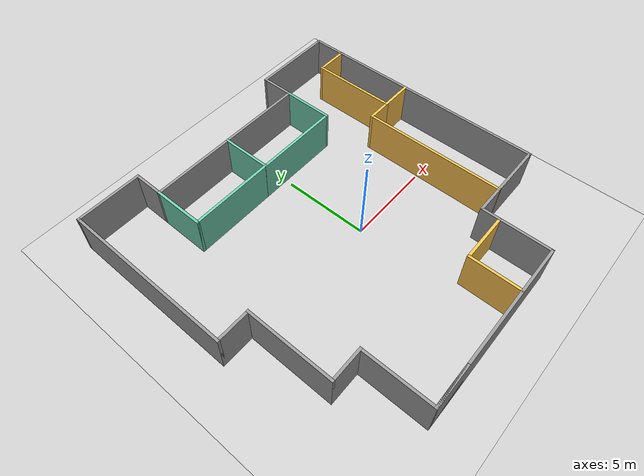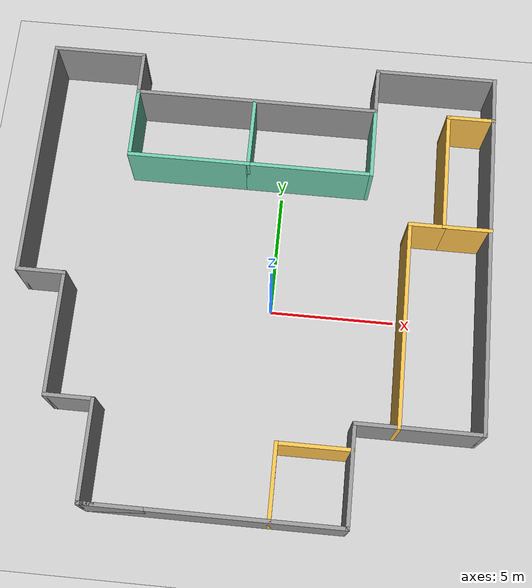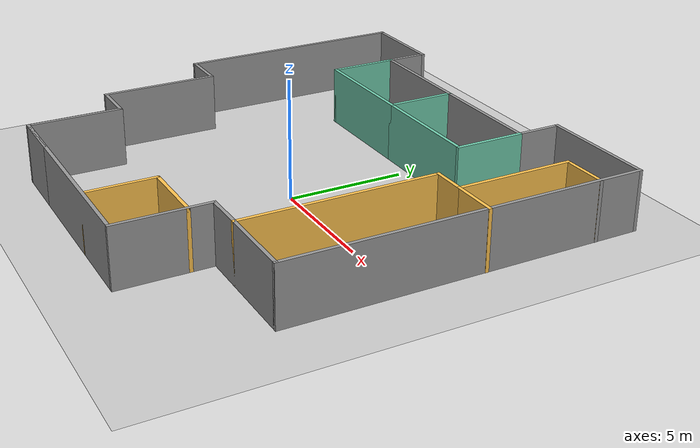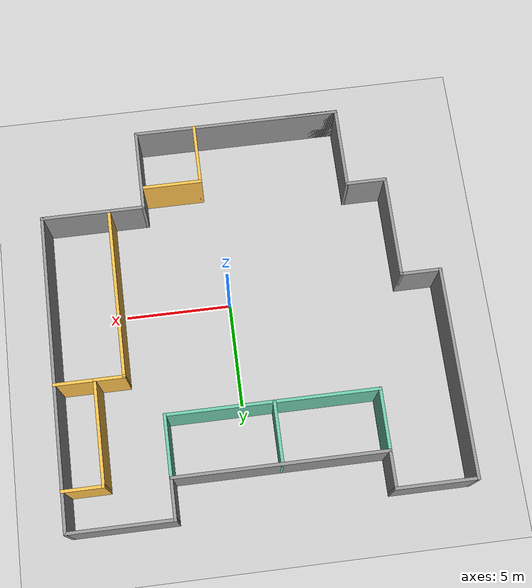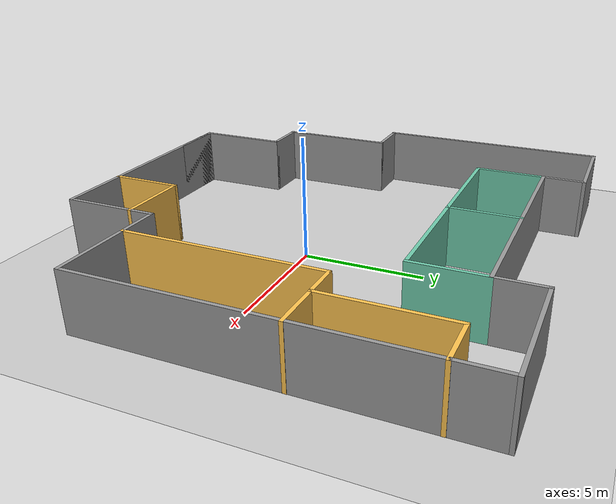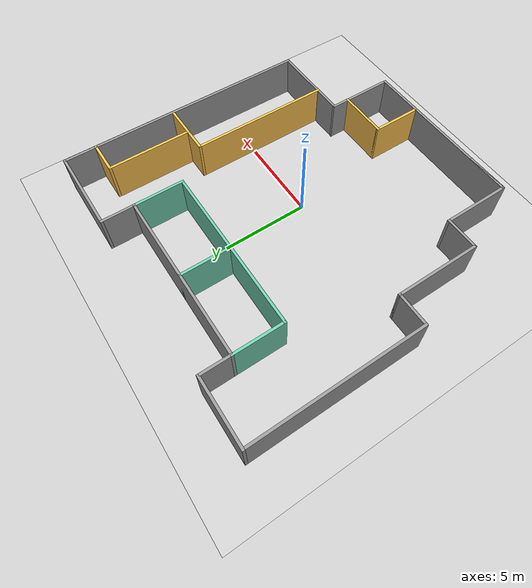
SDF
<sdf version="1.6">
 <world name="default">
  <model name="ground_plane">
   <static>1</static>
   <link name="link">
    <collision name="collision">
     <geometry><plane><normal>0 0 1</normal><size>100 100</size></plane></geometry>
     <surface>
      <contact><collide_bitmask>65535</collide_bitmask></contact>
      <friction><ode><mu>100</mu><mu2>50</mu2></ode></friction>
     </surface>
    </collision>
    <visual name="visual">
     <cast_shadows>0</cast_shadows>
     <geometry><plane><normal>0 0 1</normal><size>100 100</size></plane></geometry>
     <material>
      <script><uri>file://media/materials/scripts/gazebo.material</uri><name>Gazebo/Grey</name></script>
     </material>
    </visual>
   </link>
  </model>
  <model name="model">
   <link name="Wall_0">
    <pose>-9.205 4.275 0 0 0 -1.5708</pose>
    <visual name="Wall_0_Visual">
     <pose>0 0 1.25 0 -0 0</pose>
     <geometry><box><size>10 0.15 2.5</size></box></geometry>
     <material>
      <script><uri>file://media/materials/scripts/gazebo.material</uri><name>Gazebo/Grey</name></script>
      <ambient>1 1 1 1</ambient>
     </material>
     <meta><layer>0</layer></meta>
    </visual>
    <collision name="Wall_0_Collision">
     <pose>0 0 1.25 0 -0 0</pose>
     <geometry><box><size>10 0.15 2.5</size></box></geometry>
     <surface>
      <friction>
       <ode><mu>1</mu><mu2>1</mu2><fdir1>0 0 0</fdir1><slip1>0</slip1><slip2>0</slip2></ode>
       <torsional>
        <coefficient>1</coefficient>
        <patch_radius>0</patch_radius>
        <surface_radius>0</surface_radius>
        <use_patch_radius>1</use_patch_radius>
        <ode><slip>0</slip></ode>
       </torsional>
      </friction>
      <bounce><restitution_coefficient>0</restitution_coefficient><threshold>1e+06</threshold></bounce>
      <contact>
       <collide_without_contact>0</collide_without_contact>
       <collide_without_contact_bitmask>1</collide_without_contact_bitmask>
       <collide_bitmask>1</collide_bitmask>
       <ode>
        <soft_cfm>0</soft_cfm>
        <soft_erp>0.2</soft_erp>
        <kp>1e+13</kp>
        <kd>1</kd>
        <max_vel>0.01</max_vel>
        <min_depth>0</min_depth>
       </ode>
       <bullet>
        <split_impulse>1</split_impulse>
        <split_impulse_penetration_threshold>-0.01</split_impulse_penetration_threshold>
        <soft_cfm>0</soft_cfm>
        <soft_erp>0.2</soft_erp>
        <kp>1e+13</kp>
        <kd>1</kd>
       </bullet>
      </contact>
     </surface>
    </collision>
   </link>
   <link name="Wall_10">
    <pose>6.77 -5.5 0 0 -0 0</pose>
    <visual name="Wall_10_Visual">
     <pose>0 0 1.25 0 -0 0</pose>
     <geometry><box><size>5 0.15 2.5</size></box></geometry>
     <material>
      <script><uri>file://media/materials/scripts/gazebo.material</uri><name>Gazebo/Grey</name></script>
      <ambient>1 1 1 1</ambient>
     </material>
     <meta><layer>0</layer></meta>
    </visual>
    <collision name="Wall_10_Collision">
     <pose>0 0 1.25 0 -0 0</pose>
     <geometry><box><size>5 0.15 2.5</size></box></geometry>
     <surface>
      <friction>
       <ode><mu>1</mu><mu2>1</mu2><fdir1>0 0 0</fdir1><slip1>0</slip1><slip2>0</slip2></ode>
       <torsional>
        <coefficient>1</coefficient>
        <patch_radius>0</patch_radius>
        <surface_radius>0</surface_radius>
        <use_patch_radius>1</use_patch_radius>
        <ode><slip>0</slip></ode>
       </torsional>
      </friction>
      <bounce><restitution_coefficient>0</restitution_coefficient><threshold>1e+06</threshold></bounce>
      <contact>
       <collide_without_contact>0</collide_without_contact>
       <collide_without_contact_bitmask>1</collide_without_contact_bitmask>
       <collide_bitmask>1</collide_bitmask>
       <ode>
        <soft_cfm>0</soft_cfm>
        <soft_erp>0.2</soft_erp>
        <kp>1e+13</kp>
        <kd>1</kd>
        <max_vel>0.01</max_vel>
        <min_depth>0</min_depth>
       </ode>
       <bullet>
        <split_impulse>1</split_impulse>
        <split_impulse_penetration_threshold>-0.01</split_impulse_penetration_threshold>
        <soft_cfm>0</soft_cfm>
        <soft_erp>0.2</soft_erp>
        <kp>1e+13</kp>
        <kd>1</kd>
       </bullet>
      </contact>
     </surface>
    </collision>
   </link>
   <link name="Wall_12">
    <pose>9.195 1.925 0 0 -0 1.5708</pose>
    <visual name="Wall_12_Visual">
     <pose>0 0 1.25 0 -0 0</pose>
     <geometry><box><size>15 0.15 2.5</size></box></geometry>
     <material>
      <script><uri>file://media/materials/scripts/gazebo.material</uri><name>Gazebo/Grey</name></script>
      <ambient>1 1 1 1</ambient>
     </material>
     <meta><layer>0</layer></meta>
    </visual>
    <collision name="Wall_12_Collision">
     <pose>0 0 1.25 0 -0 0</pose>
     <geometry><box><size>15 0.15 2.5</size></box></geometry>
     <surface>
      <friction>
       <ode><mu>1</mu><mu2>1</mu2><fdir1>0 0 0</fdir1><slip1>0</slip1><slip2>0</slip2></ode>
       <torsional>
        <coefficient>1</coefficient>
        <patch_radius>0</patch_radius>
        <surface_radius>0</surface_radius>
        <use_patch_radius>1</use_patch_radius>
        <ode><slip>0</slip></ode>
       </torsional>
      </friction>
      <bounce><restitution_coefficient>0</restitution_coefficient><threshold>1e+06</threshold></bounce>
      <contact>
       <collide_without_contact>0</collide_without_contact>
       <collide_without_contact_bitmask>1</collide_without_contact_bitmask>
       <collide_bitmask>1</collide_bitmask>
       <ode>
        <soft_cfm>0</soft_cfm>
        <soft_erp>0.2</soft_erp>
        <kp>1e+13</kp>
        <kd>1</kd>
        <max_vel>0.01</max_vel>
        <min_depth>0</min_depth>
       </ode>
       <bullet>
        <split_impulse>1</split_impulse>
        <split_impulse_penetration_threshold>-0.01</split_impulse_penetration_threshold>
        <soft_cfm>0</soft_cfm>
        <soft_erp>0.2</soft_erp>
        <kp>1e+13</kp>
        <kd>1</kd>
       </bullet>
      </contact>
     </surface>
    </collision>
   </link>
   <link name="Wall_13">
    <pose>6.77 9.35 0 0 -0 3.14159</pose>
    <visual name="Wall_13_Visual">
     <pose>0 0 1.25 0 -0 0</pose>
     <geometry><box><size>5 0.15 2.5</size></box></geometry>
     <material>
      <script><uri>file://media/materials/scripts/gazebo.material</uri><name>Gazebo/Grey</name></script>
      <ambient>1 1 1 1</ambient>
     </material>
     <meta><layer>0</layer></meta>
    </visual>
    <collision name="Wall_13_Collision">
     <pose>0 0 1.25 0 -0 0</pose>
     <geometry><box><size>5 0.15 2.5</size></box></geometry>
     <surface>
      <friction>
       <ode><mu>1</mu><mu2>1</mu2><fdir1>0 0 0</fdir1><slip1>0</slip1><slip2>0</slip2></ode>
       <torsional>
        <coefficient>1</coefficient>
        <patch_radius>0</patch_radius>
        <surface_radius>0</surface_radius>
        <use_patch_radius>1</use_patch_radius>
        <ode><slip>0</slip></ode>
       </torsional>
      </friction>
      <bounce><restitution_coefficient>0</restitution_coefficient><threshold>1e+06</threshold></bounce>
      <contact>
       <collide_without_contact>0</collide_without_contact>
       <collide_without_contact_bitmask>1</collide_without_contact_bitmask>
       <collide_bitmask>1</collide_bitmask>
       <ode>
        <soft_cfm>0</soft_cfm>
        <soft_erp>0.2</soft_erp>
        <kp>1e+13</kp>
        <kd>1</kd>
        <max_vel>0.01</max_vel>
        <min_depth>0</min_depth>
       </ode>
       <bullet>
        <split_impulse>1</split_impulse>
        <split_impulse_penetration_threshold>-0.01</split_impulse_penetration_threshold>
        <soft_cfm>0</soft_cfm>
        <soft_erp>0.2</soft_erp>
        <kp>1e+13</kp>
        <kd>1</kd>
       </bullet>
      </contact>
     </surface>
    </collision>
   </link>
   <link name="Wall_14">
    <pose>4.345 8.425 0 0 0 -1.5708</pose>
    <visual name="Wall_14_Visual">
     <pose>0 0 1.25 0 -0 0</pose>
     <geometry><box><size>2 0.15 2.5</size></box></geometry>
     <material>
      <script><uri>file://media/materials/scripts/gazebo.material</uri><name>Gazebo/Grey</name></script>
      <ambient>1 1 1 1</ambient>
     </material>
     <meta><layer>0</layer></meta>
    </visual>
    <collision name="Wall_14_Collision">
     <pose>0 0 1.25 0 -0 0</pose>
     <geometry><box><size>2 0.15 2.5</size></box></geometry>
     <surface>
      <friction>
       <ode><mu>1</mu><mu2>1</mu2><fdir1>0 0 0</fdir1><slip1>0</slip1><slip2>0</slip2></ode>
       <torsional>
        <coefficient>1</coefficient>
        <patch_radius>0</patch_radius>
        <surface_radius>0</surface_radius>
        <use_patch_radius>1</use_patch_radius>
        <ode><slip>0</slip></ode>
       </torsional>
      </friction>
      <bounce><restitution_coefficient>0</restitution_coefficient><threshold>1e+06</threshold></bounce>
      <contact>
       <collide_without_contact>0</collide_without_contact>
       <collide_without_contact_bitmask>1</collide_without_contact_bitmask>
       <collide_bitmask>1</collide_bitmask>
       <ode>
        <soft_cfm>0</soft_cfm>
        <soft_erp>0.2</soft_erp>
        <kp>1e+13</kp>
        <kd>1</kd>
        <max_vel>0.01</max_vel>
        <min_depth>0</min_depth>
       </ode>
       <bullet>
        <split_impulse>1</split_impulse>
        <split_impulse_penetration_threshold>-0.01</split_impulse_penetration_threshold>
        <soft_cfm>0</soft_cfm>
        <soft_erp>0.2</soft_erp>
        <kp>1e+13</kp>
        <kd>1</kd>
       </bullet>
      </contact>
     </surface>
    </collision>
   </link>
   <link name="Wall_15">
    <pose>-0.58 7.5 0 0 -0 3.14159</pose>
    <visual name="Wall_15_Visual">
     <pose>0 0 1.25 0 -0 0</pose>
     <geometry><box><size>10 0.15 2.5</size></box></geometry>
     <material>
      <script><uri>file://media/materials/scripts/gazebo.material</uri><name>Gazebo/Grey</name></script>
      <ambient>1 1 1 1</ambient>
     </material>
     <meta><layer>0</layer></meta>
    </visual>
    <collision name="Wall_15_Collision">
     <pose>0 0 1.25 0 -0 0</pose>
     <geometry><box><size>10 0.15 2.5</size></box></geometry>
     <surface>
      <friction>
       <ode><mu>1</mu><mu2>1</mu2><fdir1>0 0 0</fdir1><slip1>0</slip1><slip2>0</slip2></ode>
       <torsional>
        <coefficient>1</coefficient>
        <patch_radius>0</patch_radius>
        <surface_radius>0</surface_radius>
        <use_patch_radius>1</use_patch_radius>
        <ode><slip>0</slip></ode>
       </torsional>
      </friction>
      <bounce><restitution_coefficient>0</restitution_coefficient><threshold>1e+06</threshold></bounce>
      <contact>
       <collide_without_contact>0</collide_without_contact>
       <collide_without_contact_bitmask>1</collide_without_contact_bitmask>
       <collide_bitmask>1</collide_bitmask>
       <ode>
        <soft_cfm>0</soft_cfm>
        <soft_erp>0.2</soft_erp>
        <kp>1e+13</kp>
        <kd>1</kd>
        <max_vel>0.01</max_vel>
        <min_depth>0</min_depth>
       </ode>
       <bullet>
        <split_impulse>1</split_impulse>
        <split_impulse_penetration_threshold>-0.01</split_impulse_penetration_threshold>
        <soft_cfm>0</soft_cfm>
        <soft_erp>0.2</soft_erp>
        <kp>1e+13</kp>
        <kd>1</kd>
       </bullet>
      </contact>
     </surface>
    </collision>
   </link>
   <link name="Wall_16">
    <pose>-5.505 8.3 0 0 -0 1.5708</pose>
    <visual name="Wall_16_Visual">
     <pose>0 0 1.25 0 -0 0</pose>
     <geometry><box><size>1.75 0.15 2.5</size></box></geometry>
     <material>
      <script><uri>file://media/materials/scripts/gazebo.material</uri><name>Gazebo/Grey</name></script>
      <ambient>1 1 1 1</ambient>
     </material>
     <meta><layer>0</layer></meta>
    </visual>
    <collision name="Wall_16_Collision">
     <pose>0 0 1.25 0 -0 0</pose>
     <geometry><box><size>1.75 0.15 2.5</size></box></geometry>
     <surface>
      <friction>
       <ode><mu>1</mu><mu2>1</mu2><fdir1>0 0 0</fdir1><slip1>0</slip1><slip2>0</slip2></ode>
       <torsional>
        <coefficient>1</coefficient>
        <patch_radius>0</patch_radius>
        <surface_radius>0</surface_radius>
        <use_patch_radius>1</use_patch_radius>
        <ode><slip>0</slip></ode>
       </torsional>
      </friction>
      <bounce><restitution_coefficient>0</restitution_coefficient><threshold>1e+06</threshold></bounce>
      <contact>
       <collide_without_contact>0</collide_without_contact>
       <collide_without_contact_bitmask>1</collide_without_contact_bitmask>
       <collide_bitmask>1</collide_bitmask>
       <ode>
        <soft_cfm>0</soft_cfm>
        <soft_erp>0.2</soft_erp>
        <kp>1e+13</kp>
        <kd>1</kd>
        <max_vel>0.01</max_vel>
        <min_depth>0</min_depth>
       </ode>
       <bullet>
        <split_impulse>1</split_impulse>
        <split_impulse_penetration_threshold>-0.01</split_impulse_penetration_threshold>
        <soft_cfm>0</soft_cfm>
        <soft_erp>0.2</soft_erp>
        <kp>1e+13</kp>
        <kd>1</kd>
       </bullet>
      </contact>
     </surface>
    </collision>
   </link>
   <link name="Wall_18">
    <pose>-5.505 6.075 0 0 0 -1.5708</pose>
    <visual name="Wall_18_Visual">
     <pose>0 0 1.25 0 -0 0</pose>
     <geometry><box><size>3 0.15 2.5</size></box></geometry>
     <material>
      <script><uri>file://media/materials/scripts/gazebo.material</uri><name>Gazebo/Grey</name></script>
      <ambient>0.435294 0.796078 0.67451 1</ambient>
     </material>
     <meta><layer>0</layer></meta>
    </visual>
    <collision name="Wall_18_Collision">
     <pose>0 0 1.25 0 -0 0</pose>
     <geometry><box><size>3 0.15 2.5</size></box></geometry>
     <surface>
      <friction>
       <ode><mu>1</mu><mu2>1</mu2><fdir1>0 0 0</fdir1><slip1>0</slip1><slip2>0</slip2></ode>
       <torsional>
        <coefficient>1</coefficient>
        <patch_radius>0</patch_radius>
        <surface_radius>0</surface_radius>
        <use_patch_radius>1</use_patch_radius>
        <ode><slip>0</slip></ode>
       </torsional>
      </friction>
      <bounce><restitution_coefficient>0</restitution_coefficient><threshold>1e+06</threshold></bounce>
      <contact>
       <collide_without_contact>0</collide_without_contact>
       <collide_without_contact_bitmask>1</collide_without_contact_bitmask>
       <collide_bitmask>1</collide_bitmask>
       <ode>
        <soft_cfm>0</soft_cfm>
        <soft_erp>0.2</soft_erp>
        <kp>1e+13</kp>
        <kd>1</kd>
        <max_vel>0.01</max_vel>
        <min_depth>0</min_depth>
       </ode>
       <bullet>
        <split_impulse>1</split_impulse>
        <split_impulse_penetration_threshold>-0.01</split_impulse_penetration_threshold>
        <soft_cfm>0</soft_cfm>
        <soft_erp>0.2</soft_erp>
        <kp>1e+13</kp>
        <kd>1</kd>
       </bullet>
      </contact>
     </surface>
    </collision>
   </link>
   <link name="Wall_19">
    <pose>-3.08 4.65 0 0 -0 0</pose>
    <visual name="Wall_19_Visual">
     <pose>0 0 1.25 0 -0 0</pose>
     <geometry><box><size>5 0.15 2.5</size></box></geometry>
     <material>
      <script><uri>file://media/materials/scripts/gazebo.material</uri><name>Gazebo/Grey</name></script>
      <ambient>0.435294 0.796078 0.67451 1</ambient>
     </material>
     <meta><layer>0</layer></meta>
    </visual>
    <collision name="Wall_19_Collision">
     <pose>0 0 1.25 0 -0 0</pose>
     <geometry><box><size>5 0.15 2.5</size></box></geometry>
     <surface>
      <friction>
       <ode><mu>1</mu><mu2>1</mu2><fdir1>0 0 0</fdir1><slip1>0</slip1><slip2>0</slip2></ode>
       <torsional>
        <coefficient>1</coefficient>
        <patch_radius>0</patch_radius>
        <surface_radius>0</surface_radius>
        <use_patch_radius>1</use_patch_radius>
        <ode><slip>0</slip></ode>
       </torsional>
      </friction>
      <bounce><restitution_coefficient>0</restitution_coefficient><threshold>1e+06</threshold></bounce>
      <contact>
       <collide_without_contact>0</collide_without_contact>
       <collide_without_contact_bitmask>1</collide_without_contact_bitmask>
       <collide_bitmask>1</collide_bitmask>
       <ode>
        <soft_cfm>0</soft_cfm>
        <soft_erp>0.2</soft_erp>
        <kp>1e+13</kp>
        <kd>1</kd>
        <max_vel>0.01</max_vel>
        <min_depth>0</min_depth>
       </ode>
       <bullet>
        <split_impulse>1</split_impulse>
        <split_impulse_penetration_threshold>-0.01</split_impulse_penetration_threshold>
        <soft_cfm>0</soft_cfm>
        <soft_erp>0.2</soft_erp>
        <kp>1e+13</kp>
        <kd>1</kd>
       </bullet>
      </contact>
     </surface>
    </collision>
   </link>
   <link name="Wall_2">
    <pose>-7.355 9.2 0 0 -0 0</pose>
    <visual name="Wall_2_Visual">
     <pose>0 0 1.25 0 -0 0</pose>
     <geometry><box><size>3.85 0.15 2.5</size></box></geometry>
     <material>
      <script><uri>file://media/materials/scripts/gazebo.material</uri><name>Gazebo/Grey</name></script>
      <ambient>1 1 1 1</ambient>
     </material>
     <meta><layer>0</layer></meta>
    </visual>
    <collision name="Wall_2_Collision">
     <pose>0 0 1.25 0 -0 0</pose>
     <geometry><box><size>3.85 0.15 2.5</size></box></geometry>
     <surface>
      <friction>
       <ode><mu>1</mu><mu2>1</mu2><fdir1>0 0 0</fdir1><slip1>0</slip1><slip2>0</slip2></ode>
       <torsional>
        <coefficient>1</coefficient>
        <patch_radius>0</patch_radius>
        <surface_radius>0</surface_radius>
        <use_patch_radius>1</use_patch_radius>
        <ode><slip>0</slip></ode>
       </torsional>
      </friction>
      <bounce><restitution_coefficient>0</restitution_coefficient><threshold>1e+06</threshold></bounce>
      <contact>
       <collide_without_contact>0</collide_without_contact>
       <collide_without_contact_bitmask>1</collide_without_contact_bitmask>
       <collide_bitmask>1</collide_bitmask>
       <ode>
        <soft_cfm>0</soft_cfm>
        <soft_erp>0.2</soft_erp>
        <kp>1e+13</kp>
        <kd>1</kd>
        <max_vel>0.01</max_vel>
        <min_depth>0</min_depth>
       </ode>
       <bullet>
        <split_impulse>1</split_impulse>
        <split_impulse_penetration_threshold>-0.01</split_impulse_penetration_threshold>
        <soft_cfm>0</soft_cfm>
        <soft_erp>0.2</soft_erp>
        <kp>1e+13</kp>
        <kd>1</kd>
       </bullet>
      </contact>
     </surface>
    </collision>
   </link>
   <link name="Wall_20">
    <pose>-0.655 6.075 0 0 -0 1.5708</pose>
    <visual name="Wall_20_Visual">
     <pose>0 0 1.25 0 -0 0</pose>
     <geometry><box><size>3 0.15 2.5</size></box></geometry>
     <material>
      <script><uri>file://media/materials/scripts/gazebo.material</uri><name>Gazebo/Grey</name></script>
      <ambient>0.435294 0.796078 0.67451 1</ambient>
     </material>
     <meta><layer>0</layer></meta>
    </visual>
    <collision name="Wall_20_Collision">
     <pose>0 0 1.25 0 -0 0</pose>
     <geometry><box><size>3 0.15 2.5</size></box></geometry>
     <surface>
      <friction>
       <ode><mu>1</mu><mu2>1</mu2><fdir1>0 0 0</fdir1><slip1>0</slip1><slip2>0</slip2></ode>
       <torsional>
        <coefficient>1</coefficient>
        <patch_radius>0</patch_radius>
        <surface_radius>0</surface_radius>
        <use_patch_radius>1</use_patch_radius>
        <ode><slip>0</slip></ode>
       </torsional>
      </friction>
      <bounce><restitution_coefficient>0</restitution_coefficient><threshold>1e+06</threshold></bounce>
      <contact>
       <collide_without_contact>0</collide_without_contact>
       <collide_without_contact_bitmask>1</collide_without_contact_bitmask>
       <collide_bitmask>1</collide_bitmask>
       <ode>
        <soft_cfm>0</soft_cfm>
        <soft_erp>0.2</soft_erp>
        <kp>1e+13</kp>
        <kd>1</kd>
        <max_vel>0.01</max_vel>
        <min_depth>0</min_depth>
       </ode>
       <bullet>
        <split_impulse>1</split_impulse>
        <split_impulse_penetration_threshold>-0.01</split_impulse_penetration_threshold>
        <soft_cfm>0</soft_cfm>
        <soft_erp>0.2</soft_erp>
        <kp>1e+13</kp>
        <kd>1</kd>
       </bullet>
      </contact>
     </surface>
    </collision>
   </link>
   <link name="Wall_21">
    <pose>1.77 4.65 0 0 -0 0</pose>
    <visual name="Wall_21_Visual">
     <pose>0 0 1.25 0 -0 0</pose>
     <geometry><box><size>5 0.15 2.5</size></box></geometry>
     <material>
      <script><uri>file://media/materials/scripts/gazebo.material</uri><name>Gazebo/Grey</name></script>
      <ambient>0.435294 0.796078 0.67451 1</ambient>
     </material>
     <meta><layer>0</layer></meta>
    </visual>
    <collision name="Wall_21_Collision">
     <pose>0 0 1.25 0 -0 0</pose>
     <geometry><box><size>5 0.15 2.5</size></box></geometry>
     <surface>
      <friction>
       <ode><mu>1</mu><mu2>1</mu2><fdir1>0 0 0</fdir1><slip1>0</slip1><slip2>0</slip2></ode>
       <torsional>
        <coefficient>1</coefficient>
        <patch_radius>0</patch_radius>
        <surface_radius>0</surface_radius>
        <use_patch_radius>1</use_patch_radius>
        <ode><slip>0</slip></ode>
       </torsional>
      </friction>
      <bounce><restitution_coefficient>0</restitution_coefficient><threshold>1e+06</threshold></bounce>
      <contact>
       <collide_without_contact>0</collide_without_contact>
       <collide_without_contact_bitmask>1</collide_without_contact_bitmask>
       <collide_bitmask>1</collide_bitmask>
       <ode>
        <soft_cfm>0</soft_cfm>
        <soft_erp>0.2</soft_erp>
        <kp>1e+13</kp>
        <kd>1</kd>
        <max_vel>0.01</max_vel>
        <min_depth>0</min_depth>
       </ode>
       <bullet>
        <split_impulse>1</split_impulse>
        <split_impulse_penetration_threshold>-0.01</split_impulse_penetration_threshold>
        <soft_cfm>0</soft_cfm>
        <soft_erp>0.2</soft_erp>
        <kp>1e+13</kp>
        <kd>1</kd>
       </bullet>
      </contact>
     </surface>
    </collision>
   </link>
   <link name="Wall_22">
    <pose>4.345 6.075 0 0 0 -1.5708</pose>
    <visual name="Wall_22_Visual">
     <pose>0 0 1.25 0 -0 0</pose>
     <geometry><box><size>3 0.15 2.5</size></box></geometry>
     <material>
      <script><uri>file://media/materials/scripts/gazebo.material</uri><name>Gazebo/Grey</name></script>
      <ambient>0.435294 0.796078 0.67451 1</ambient>
     </material>
     <meta><layer>0</layer></meta>
    </visual>
    <collision name="Wall_22_Collision">
     <pose>0 0 1.25 0 -0 0</pose>
     <geometry><box><size>3 0.15 2.5</size></box></geometry>
     <surface>
      <friction>
       <ode><mu>1</mu><mu2>1</mu2><fdir1>0 0 0</fdir1><slip1>0</slip1><slip2>0</slip2></ode>
       <torsional>
        <coefficient>1</coefficient>
        <patch_radius>0</patch_radius>
        <surface_radius>0</surface_radius>
        <use_patch_radius>1</use_patch_radius>
        <ode><slip>0</slip></ode>
       </torsional>
      </friction>
      <bounce><restitution_coefficient>0</restitution_coefficient><threshold>1e+06</threshold></bounce>
      <contact>
       <collide_without_contact>0</collide_without_contact>
       <collide_without_contact_bitmask>1</collide_without_contact_bitmask>
       <collide_bitmask>1</collide_bitmask>
       <ode>
        <soft_cfm>0</soft_cfm>
        <soft_erp>0.2</soft_erp>
        <kp>1e+13</kp>
        <kd>1</kd>
        <max_vel>0.01</max_vel>
        <min_depth>0</min_depth>
       </ode>
       <bullet>
        <split_impulse>1</split_impulse>
        <split_impulse_penetration_threshold>-0.01</split_impulse_penetration_threshold>
        <soft_cfm>0</soft_cfm>
        <soft_erp>0.2</soft_erp>
        <kp>1e+13</kp>
        <kd>1</kd>
       </bullet>
      </contact>
     </surface>
    </collision>
   </link>
   <link name="Wall_24">
    <pose>9.2 7.5 0 0 -0 0</pose>
    <visual name="Wall_24_Visual">
     <pose>0 0 1.25 0 -0 0</pose>
     <geometry><box><size>0.16 0.15 2.5</size></box></geometry>
     <material>
      <script><uri>file://media/materials/scripts/gazebo.material</uri><name>Gazebo/Grey</name></script>
      <ambient>1 1 1 1</ambient>
     </material>
     <meta><layer>0</layer></meta>
    </visual>
    <collision name="Wall_24_Collision">
     <pose>0 0 1.25 0 -0 0</pose>
     <geometry><box><size>0.16 0.15 2.5</size></box></geometry>
     <surface>
      <friction>
       <ode><mu>1</mu><mu2>1</mu2><fdir1>0 0 0</fdir1><slip1>0</slip1><slip2>0</slip2></ode>
       <torsional>
        <coefficient>1</coefficient>
        <patch_radius>0</patch_radius>
        <surface_radius>0</surface_radius>
        <use_patch_radius>1</use_patch_radius>
        <ode><slip>0</slip></ode>
       </torsional>
      </friction>
      <bounce><restitution_coefficient>0</restitution_coefficient><threshold>1e+06</threshold></bounce>
      <contact>
       <collide_without_contact>0</collide_without_contact>
       <collide_without_contact_bitmask>1</collide_without_contact_bitmask>
       <collide_bitmask>1</collide_bitmask>
       <ode>
        <soft_cfm>0</soft_cfm>
        <soft_erp>0.2</soft_erp>
        <kp>1e+13</kp>
        <kd>1</kd>
        <max_vel>0.01</max_vel>
        <min_depth>0</min_depth>
       </ode>
       <bullet>
        <split_impulse>1</split_impulse>
        <split_impulse_penetration_threshold>-0.01</split_impulse_penetration_threshold>
        <soft_cfm>0</soft_cfm>
        <soft_erp>0.2</soft_erp>
        <kp>1e+13</kp>
        <kd>1</kd>
       </bullet>
      </contact>
     </surface>
    </collision>
   </link>
   <link name="Wall_25">
    <pose>8.28 7.5 0 0 -0 3.14159</pose>
    <visual name="Wall_25_Visual">
     <pose>0 0 1.25 0 -0 0</pose>
     <geometry><box><size>2 0.15 2.5</size></box></geometry>
     <material>
      <script><uri>file://media/materials/scripts/gazebo.material</uri><name>Gazebo/Grey</name></script>
      <ambient>1 0.764706 0.305882 1</ambient>
     </material>
     <meta><layer>0</layer></meta>
    </visual>
    <collision name="Wall_25_Collision">
     <pose>0 0 1.25 0 -0 0</pose>
     <geometry><box><size>2 0.15 2.5</size></box></geometry>
     <surface>
      <friction>
       <ode><mu>1</mu><mu2>1</mu2><fdir1>0 0 0</fdir1><slip1>0</slip1><slip2>0</slip2></ode>
       <torsional>
        <coefficient>1</coefficient>
        <patch_radius>0</patch_radius>
        <surface_radius>0</surface_radius>
        <use_patch_radius>1</use_patch_radius>
        <ode><slip>0</slip></ode>
       </torsional>
      </friction>
      <bounce><restitution_coefficient>0</restitution_coefficient><threshold>1e+06</threshold></bounce>
      <contact>
       <collide_without_contact>0</collide_without_contact>
       <collide_without_contact_bitmask>1</collide_without_contact_bitmask>
       <collide_bitmask>1</collide_bitmask>
       <ode>
        <soft_cfm>0</soft_cfm>
        <soft_erp>0.2</soft_erp>
        <kp>1e+13</kp>
        <kd>1</kd>
        <max_vel>0.01</max_vel>
        <min_depth>0</min_depth>
       </ode>
       <bullet>
        <split_impulse>1</split_impulse>
        <split_impulse_penetration_threshold>-0.01</split_impulse_penetration_threshold>
        <soft_cfm>0</soft_cfm>
        <soft_erp>0.2</soft_erp>
        <kp>1e+13</kp>
        <kd>1</kd>
       </bullet>
      </contact>
     </surface>
    </collision>
   </link>
   <link name="Wall_26">
    <pose>7.355 5.075 0 0 0 -1.5708</pose>
    <visual name="Wall_26_Visual">
     <pose>0 0 1.25 0 -0 0</pose>
     <geometry><box><size>5 0.15 2.5</size></box></geometry>
     <material>
      <script><uri>file://media/materials/scripts/gazebo.material</uri><name>Gazebo/Grey</name></script>
      <ambient>1 0.764706 0.305882 1</ambient>
     </material>
     <meta><layer>0</layer></meta>
    </visual>
    <collision name="Wall_26_Collision">
     <pose>0 0 1.25 0 -0 0</pose>
     <geometry><box><size>5 0.15 2.5</size></box></geometry>
     <surface>
      <friction>
       <ode><mu>1</mu><mu2>1</mu2><fdir1>0 0 0</fdir1><slip1>0</slip1><slip2>0</slip2></ode>
       <torsional>
        <coefficient>1</coefficient>
        <patch_radius>0</patch_radius>
        <surface_radius>0</surface_radius>
        <use_patch_radius>1</use_patch_radius>
        <ode><slip>0</slip></ode>
       </torsional>
      </friction>
      <bounce><restitution_coefficient>0</restitution_coefficient><threshold>1e+06</threshold></bounce>
      <contact>
       <collide_without_contact>0</collide_without_contact>
       <collide_without_contact_bitmask>1</collide_without_contact_bitmask>
       <collide_bitmask>1</collide_bitmask>
       <ode>
        <soft_cfm>0</soft_cfm>
        <soft_erp>0.2</soft_erp>
        <kp>1e+13</kp>
        <kd>1</kd>
        <max_vel>0.01</max_vel>
        <min_depth>0</min_depth>
       </ode>
       <bullet>
        <split_impulse>1</split_impulse>
        <split_impulse_penetration_threshold>-0.01</split_impulse_penetration_threshold>
        <soft_cfm>0</soft_cfm>
        <soft_erp>0.2</soft_erp>
        <kp>1e+13</kp>
        <kd>1</kd>
       </bullet>
      </contact>
     </surface>
    </collision>
   </link>
   <link name="Wall_29">
    <pose>8.28 2.65 0 0 -0 0</pose>
    <visual name="Wall_29_Visual">
     <pose>0 0 1.25 0 -0 0</pose>
     <geometry><box><size>2 0.15 2.5</size></box></geometry>
     <material>
      <script><uri>file://media/materials/scripts/gazebo.material</uri><name>Gazebo/Grey</name></script>
      <ambient>1 0.764706 0.305882 1</ambient>
     </material>
     <meta><layer>0</layer></meta>
    </visual>
    <collision name="Wall_29_Collision">
     <pose>0 0 1.25 0 -0 0</pose>
     <geometry><box><size>2 0.15 2.5</size></box></geometry>
     <surface>
      <friction>
       <ode><mu>1</mu><mu2>1</mu2><fdir1>0 0 0</fdir1><slip1>0</slip1><slip2>0</slip2></ode>
       <torsional>
        <coefficient>1</coefficient>
        <patch_radius>0</patch_radius>
        <surface_radius>0</surface_radius>
        <use_patch_radius>1</use_patch_radius>
        <ode><slip>0</slip></ode>
       </torsional>
      </friction>
      <bounce><restitution_coefficient>0</restitution_coefficient><threshold>1e+06</threshold></bounce>
      <contact>
       <collide_without_contact>0</collide_without_contact>
       <collide_without_contact_bitmask>1</collide_without_contact_bitmask>
       <collide_bitmask>1</collide_bitmask>
       <ode>
        <soft_cfm>0</soft_cfm>
        <soft_erp>0.2</soft_erp>
        <kp>1e+13</kp>
        <kd>1</kd>
        <max_vel>0.01</max_vel>
        <min_depth>0</min_depth>
       </ode>
       <bullet>
        <split_impulse>1</split_impulse>
        <split_impulse_penetration_threshold>-0.01</split_impulse_penetration_threshold>
        <soft_cfm>0</soft_cfm>
        <soft_erp>0.2</soft_erp>
        <kp>1e+13</kp>
        <kd>1</kd>
       </bullet>
      </contact>
     </surface>
    </collision>
   </link>
   <link name="Wall_3">
    <pose>-8.28 -0.65 0 0 -0 0</pose>
    <visual name="Wall_3_Visual">
     <pose>0 0 1.25 0 -0 0</pose>
     <geometry><box><size>2 0.15 2.5</size></box></geometry>
     <material>
      <script><uri>file://media/materials/scripts/gazebo.material</uri><name>Gazebo/Grey</name></script>
      <ambient>1 1 1 1</ambient>
     </material>
     <meta><layer>0</layer></meta>
    </visual>
    <collision name="Wall_3_Collision">
     <pose>0 0 1.25 0 -0 0</pose>
     <geometry><box><size>2 0.15 2.5</size></box></geometry>
     <surface>
      <friction>
       <ode><mu>1</mu><mu2>1</mu2><fdir1>0 0 0</fdir1><slip1>0</slip1><slip2>0</slip2></ode>
       <torsional>
        <coefficient>1</coefficient>
        <patch_radius>0</patch_radius>
        <surface_radius>0</surface_radius>
        <use_patch_radius>1</use_patch_radius>
        <ode><slip>0</slip></ode>
       </torsional>
      </friction>
      <bounce><restitution_coefficient>0</restitution_coefficient><threshold>1e+06</threshold></bounce>
      <contact>
       <collide_without_contact>0</collide_without_contact>
       <collide_without_contact_bitmask>1</collide_without_contact_bitmask>
       <collide_bitmask>1</collide_bitmask>
       <ode>
        <soft_cfm>0</soft_cfm>
        <soft_erp>0.2</soft_erp>
        <kp>1e+13</kp>
        <kd>1</kd>
        <max_vel>0.01</max_vel>
        <min_depth>0</min_depth>
       </ode>
       <bullet>
        <split_impulse>1</split_impulse>
        <split_impulse_penetration_threshold>-0.01</split_impulse_penetration_threshold>
        <soft_cfm>0</soft_cfm>
        <soft_erp>0.2</soft_erp>
        <kp>1e+13</kp>
        <kd>1</kd>
       </bullet>
      </contact>
     </surface>
    </collision>
   </link>
   <link name="Wall_31">
    <pose>6.68 2.65 0 0 -0 3.14159</pose>
    <visual name="Wall_31_Visual">
     <pose>0 0 1.25 0 -0 0</pose>
     <geometry><box><size>1.5 0.15 2.5</size></box></geometry>
     <material>
      <script><uri>file://media/materials/scripts/gazebo.material</uri><name>Gazebo/Grey</name></script>
      <ambient>1 0.764706 0.305882 1</ambient>
     </material>
     <meta><layer>0</layer></meta>
    </visual>
    <collision name="Wall_31_Collision">
     <pose>0 0 1.25 0 -0 0</pose>
     <geometry><box><size>1.5 0.15 2.5</size></box></geometry>
     <surface>
      <friction>
       <ode><mu>1</mu><mu2>1</mu2><fdir1>0 0 0</fdir1><slip1>0</slip1><slip2>0</slip2></ode>
       <torsional>
        <coefficient>1</coefficient>
        <patch_radius>0</patch_radius>
        <surface_radius>0</surface_radius>
        <use_patch_radius>1</use_patch_radius>
        <ode><slip>0</slip></ode>
       </torsional>
      </friction>
      <bounce><restitution_coefficient>0</restitution_coefficient><threshold>1e+06</threshold></bounce>
      <contact>
       <collide_without_contact>0</collide_without_contact>
       <collide_without_contact_bitmask>1</collide_without_contact_bitmask>
       <collide_bitmask>1</collide_bitmask>
       <ode>
        <soft_cfm>0</soft_cfm>
        <soft_erp>0.2</soft_erp>
        <kp>1e+13</kp>
        <kd>1</kd>
        <max_vel>0.01</max_vel>
        <min_depth>0</min_depth>
       </ode>
       <bullet>
        <split_impulse>1</split_impulse>
        <split_impulse_penetration_threshold>-0.01</split_impulse_penetration_threshold>
        <soft_cfm>0</soft_cfm>
        <soft_erp>0.2</soft_erp>
        <kp>1e+13</kp>
        <kd>1</kd>
       </bullet>
      </contact>
     </surface>
    </collision>
   </link>
   <link name="Wall_32">
    <pose>6.005 -1.425 0 0 0 -1.5708</pose>
    <visual name="Wall_32_Visual">
     <pose>0 0 1.25 0 -0 0</pose>
     <geometry><box><size>8.3 0.15 2.5</size></box></geometry>
     <material>
      <script><uri>file://media/materials/scripts/gazebo.material</uri><name>Gazebo/Grey</name></script>
      <ambient>1 0.764706 0.305882 1</ambient>
     </material>
     <meta><layer>0</layer></meta>
    </visual>
    <collision name="Wall_32_Collision">
     <pose>0 0 1.25 0 -0 0</pose>
     <geometry><box><size>8.3 0.15 2.5</size></box></geometry>
     <surface>
      <friction>
       <ode><mu>1</mu><mu2>1</mu2><fdir1>0 0 0</fdir1><slip1>0</slip1><slip2>0</slip2></ode>
       <torsional>
        <coefficient>1</coefficient>
        <patch_radius>0</patch_radius>
        <surface_radius>0</surface_radius>
        <use_patch_radius>1</use_patch_radius>
        <ode><slip>0</slip></ode>
       </torsional>
      </friction>
      <bounce><restitution_coefficient>0</restitution_coefficient><threshold>1e+06</threshold></bounce>
      <contact>
       <collide_without_contact>0</collide_without_contact>
       <collide_without_contact_bitmask>1</collide_without_contact_bitmask>
       <collide_bitmask>1</collide_bitmask>
       <ode>
        <soft_cfm>0</soft_cfm>
        <soft_erp>0.2</soft_erp>
        <kp>1e+13</kp>
        <kd>1</kd>
        <max_vel>0.01</max_vel>
        <min_depth>0</min_depth>
       </ode>
       <bullet>
        <split_impulse>1</split_impulse>
        <split_impulse_penetration_threshold>-0.01</split_impulse_penetration_threshold>
        <soft_cfm>0</soft_cfm>
        <soft_erp>0.2</soft_erp>
        <kp>1e+13</kp>
        <kd>1</kd>
       </bullet>
      </contact>
     </surface>
    </collision>
   </link>
   <link name="Wall_34">
    <pose>1.495 -7.925 0 0 -0 1.5708</pose>
    <visual name="Wall_34_Visual">
     <pose>0 0 1.25 0 -0 0</pose>
     <geometry><box><size>3 0.15 2.5</size></box></geometry>
     <material>
      <script><uri>file://media/materials/scripts/gazebo.material</uri><name>Gazebo/Grey</name></script>
      <ambient>1 0.764706 0.305882 1</ambient>
     </material>
     <meta><layer>0</layer></meta>
    </visual>
    <collision name="Wall_34_Collision">
     <pose>0 0 1.25 0 -0 0</pose>
     <geometry><box><size>3 0.15 2.5</size></box></geometry>
     <surface>
      <friction>
       <ode><mu>1</mu><mu2>1</mu2><fdir1>0 0 0</fdir1><slip1>0</slip1><slip2>0</slip2></ode>
       <torsional>
        <coefficient>1</coefficient>
        <patch_radius>0</patch_radius>
        <surface_radius>0</surface_radius>
        <use_patch_radius>1</use_patch_radius>
        <ode><slip>0</slip></ode>
       </torsional>
      </friction>
      <bounce><restitution_coefficient>0</restitution_coefficient><threshold>1e+06</threshold></bounce>
      <contact>
       <collide_without_contact>0</collide_without_contact>
       <collide_without_contact_bitmask>1</collide_without_contact_bitmask>
       <collide_bitmask>1</collide_bitmask>
       <ode>
        <soft_cfm>0</soft_cfm>
        <soft_erp>0.2</soft_erp>
        <kp>1e+13</kp>
        <kd>1</kd>
        <max_vel>0.01</max_vel>
        <min_depth>0</min_depth>
       </ode>
       <bullet>
        <split_impulse>1</split_impulse>
        <split_impulse_penetration_threshold>-0.01</split_impulse_penetration_threshold>
        <soft_cfm>0</soft_cfm>
        <soft_erp>0.2</soft_erp>
        <kp>1e+13</kp>
        <kd>1</kd>
       </bullet>
      </contact>
     </surface>
    </collision>
   </link>
   <link name="Wall_35">
    <pose>2.92 -6.5 0 0 -0 0</pose>
    <visual name="Wall_35_Visual">
     <pose>0 0 1.25 0 -0 0</pose>
     <geometry><box><size>3 0.15 2.5</size></box></geometry>
     <material>
      <script><uri>file://media/materials/scripts/gazebo.material</uri><name>Gazebo/Grey</name></script>
      <ambient>1 0.764706 0.305882 1</ambient>
     </material>
     <meta><layer>0</layer></meta>
    </visual>
    <collision name="Wall_35_Collision">
     <pose>0 0 1.25 0 -0 0</pose>
     <geometry><box><size>3 0.15 2.5</size></box></geometry>
     <surface>
      <friction>
       <ode><mu>1</mu><mu2>1</mu2><fdir1>0 0 0</fdir1><slip1>0</slip1><slip2>0</slip2></ode>
       <torsional>
        <coefficient>1</coefficient>
        <patch_radius>0</patch_radius>
        <surface_radius>0</surface_radius>
        <use_patch_radius>1</use_patch_radius>
        <ode><slip>0</slip></ode>
       </torsional>
      </friction>
      <bounce><restitution_coefficient>0</restitution_coefficient><threshold>1e+06</threshold></bounce>
      <contact>
       <collide_without_contact>0</collide_without_contact>
       <collide_without_contact_bitmask>1</collide_without_contact_bitmask>
       <collide_bitmask>1</collide_bitmask>
       <ode>
        <soft_cfm>0</soft_cfm>
        <soft_erp>0.2</soft_erp>
        <kp>1e+13</kp>
        <kd>1</kd>
        <max_vel>0.01</max_vel>
        <min_depth>0</min_depth>
       </ode>
       <bullet>
        <split_impulse>1</split_impulse>
        <split_impulse_penetration_threshold>-0.01</split_impulse_penetration_threshold>
        <soft_cfm>0</soft_cfm>
        <soft_erp>0.2</soft_erp>
        <kp>1e+13</kp>
        <kd>1</kd>
       </bullet>
      </contact>
     </surface>
    </collision>
   </link>
   <link name="Wall_36">
    <pose>-4.33 -9.35 0 0 -0 0</pose>
    <visual name="Wall_36_Visual">
     <pose>0 0 1.25 0 -0 0</pose>
     <geometry><box><size>2.5 0.15 2.5</size></box></geometry>
     <material>
      <script><uri>file://media/materials/scripts/gazebo.material</uri><name>Gazebo/Grey</name></script>
      <ambient>1 1 1 1</ambient>
     </material>
     <meta><layer>0</layer></meta>
    </visual>
    <collision name="Wall_36_Collision">
     <pose>0 0 1.25 0 -0 0</pose>
     <geometry><box><size>2.5 0.15 2.5</size></box></geometry>
     <surface>
      <friction>
       <ode><mu>1</mu><mu2>1</mu2><fdir1>0 0 0</fdir1><slip1>0</slip1><slip2>0</slip2></ode>
       <torsional>
        <coefficient>1</coefficient>
        <patch_radius>0</patch_radius>
        <surface_radius>0</surface_radius>
        <use_patch_radius>1</use_patch_radius>
        <ode><slip>0</slip></ode>
       </torsional>
      </friction>
      <bounce><restitution_coefficient>0</restitution_coefficient><threshold>1e+06</threshold></bounce>
      <contact>
       <collide_without_contact>0</collide_without_contact>
       <collide_without_contact_bitmask>1</collide_without_contact_bitmask>
       <collide_bitmask>1</collide_bitmask>
       <ode>
        <soft_cfm>0</soft_cfm>
        <soft_erp>0.2</soft_erp>
        <kp>1e+13</kp>
        <kd>1</kd>
        <max_vel>0.01</max_vel>
        <min_depth>0</min_depth>
       </ode>
       <bullet>
        <split_impulse>1</split_impulse>
        <split_impulse_penetration_threshold>-0.01</split_impulse_penetration_threshold>
        <soft_cfm>0</soft_cfm>
        <soft_erp>0.2</soft_erp>
        <kp>1e+13</kp>
        <kd>1</kd>
       </bullet>
      </contact>
     </surface>
    </collision>
   </link>
   <link name="Wall_4">
    <pose>-7.355 -3.075 0 0 0 -1.5708</pose>
    <visual name="Wall_4_Visual">
     <pose>0 0 1.25 0 -0 0</pose>
     <geometry><box><size>5 0.15 2.5</size></box></geometry>
     <material>
      <script><uri>file://media/materials/scripts/gazebo.material</uri><name>Gazebo/Grey</name></script>
      <ambient>1 1 1 1</ambient>
     </material>
     <meta><layer>0</layer></meta>
    </visual>
    <collision name="Wall_4_Collision">
     <pose>0 0 1.25 0 -0 0</pose>
     <geometry><box><size>5 0.15 2.5</size></box></geometry>
     <surface>
      <friction>
       <ode><mu>1</mu><mu2>1</mu2><fdir1>0 0 0</fdir1><slip1>0</slip1><slip2>0</slip2></ode>
       <torsional>
        <coefficient>1</coefficient>
        <patch_radius>0</patch_radius>
        <surface_radius>0</surface_radius>
        <use_patch_radius>1</use_patch_radius>
        <ode><slip>0</slip></ode>
       </torsional>
      </friction>
      <bounce><restitution_coefficient>0</restitution_coefficient><threshold>1e+06</threshold></bounce>
      <contact>
       <collide_without_contact>0</collide_without_contact>
       <collide_without_contact_bitmask>1</collide_without_contact_bitmask>
       <collide_bitmask>1</collide_bitmask>
       <ode>
        <soft_cfm>0</soft_cfm>
        <soft_erp>0.2</soft_erp>
        <kp>1e+13</kp>
        <kd>1</kd>
        <max_vel>0.01</max_vel>
        <min_depth>0</min_depth>
       </ode>
       <bullet>
        <split_impulse>1</split_impulse>
        <split_impulse_penetration_threshold>-0.01</split_impulse_penetration_threshold>
        <soft_cfm>0</soft_cfm>
        <soft_erp>0.2</soft_erp>
        <kp>1e+13</kp>
        <kd>1</kd>
       </bullet>
      </contact>
     </surface>
    </collision>
   </link>
   <link name="Wall_5">
    <pose>-6.43 -5.5 0 0 -0 0</pose>
    <visual name="Wall_5_Visual">
     <pose>0 0 1.25 0 -0 0</pose>
     <geometry><box><size>2 0.15 2.5</size></box></geometry>
     <material>
      <script><uri>file://media/materials/scripts/gazebo.material</uri><name>Gazebo/Grey</name></script>
      <ambient>1 1 1 1</ambient>
     </material>
     <meta><layer>0</layer></meta>
    </visual>
    <collision name="Wall_5_Collision">
     <pose>0 0 1.25 0 -0 0</pose>
     <geometry><box><size>2 0.15 2.5</size></box></geometry>
     <surface>
      <friction>
       <ode><mu>1</mu><mu2>1</mu2><fdir1>0 0 0</fdir1><slip1>0</slip1><slip2>0</slip2></ode>
       <torsional>
        <coefficient>1</coefficient>
        <patch_radius>0</patch_radius>
        <surface_radius>0</surface_radius>
        <use_patch_radius>1</use_patch_radius>
        <ode><slip>0</slip></ode>
       </torsional>
      </friction>
      <bounce><restitution_coefficient>0</restitution_coefficient><threshold>1e+06</threshold></bounce>
      <contact>
       <collide_without_contact>0</collide_without_contact>
       <collide_without_contact_bitmask>1</collide_without_contact_bitmask>
       <collide_bitmask>1</collide_bitmask>
       <ode>
        <soft_cfm>0</soft_cfm>
        <soft_erp>0.2</soft_erp>
        <kp>1e+13</kp>
        <kd>1</kd>
        <max_vel>0.01</max_vel>
        <min_depth>0</min_depth>
       </ode>
       <bullet>
        <split_impulse>1</split_impulse>
        <split_impulse_penetration_threshold>-0.01</split_impulse_penetration_threshold>
        <soft_cfm>0</soft_cfm>
        <soft_erp>0.2</soft_erp>
        <kp>1e+13</kp>
        <kd>1</kd>
       </bullet>
      </contact>
     </surface>
    </collision>
   </link>
   <link name="Wall_6">
    <pose>-5.505 -7.425 0 0 0 -1.5708</pose>
    <visual name="Wall_6_Visual">
     <pose>0 0 1.25 0 -0 0</pose>
     <geometry><box><size>4 0.15 2.5</size></box></geometry>
     <material>
      <script><uri>file://media/materials/scripts/gazebo.material</uri><name>Gazebo/Grey</name></script>
      <ambient>1 1 1 1</ambient>
     </material>
     <meta><layer>0</layer></meta>
    </visual>
    <collision name="Wall_6_Collision">
     <pose>0 0 1.25 0 -0 0</pose>
     <geometry><box><size>4 0.15 2.5</size></box></geometry>
     <surface>
      <friction>
       <ode><mu>1</mu><mu2>1</mu2><fdir1>0 0 0</fdir1><slip1>0</slip1><slip2>0</slip2></ode>
       <torsional>
        <coefficient>1</coefficient>
        <patch_radius>0</patch_radius>
        <surface_radius>0</surface_radius>
        <use_patch_radius>1</use_patch_radius>
        <ode><slip>0</slip></ode>
       </torsional>
      </friction>
      <bounce><restitution_coefficient>0</restitution_coefficient><threshold>1e+06</threshold></bounce>
      <contact>
       <collide_without_contact>0</collide_without_contact>
       <collide_without_contact_bitmask>1</collide_without_contact_bitmask>
       <collide_bitmask>1</collide_bitmask>
       <ode>
        <soft_cfm>0</soft_cfm>
        <soft_erp>0.2</soft_erp>
        <kp>1e+13</kp>
        <kd>1</kd>
        <max_vel>0.01</max_vel>
        <min_depth>0</min_depth>
       </ode>
       <bullet>
        <split_impulse>1</split_impulse>
        <split_impulse_penetration_threshold>-0.01</split_impulse_penetration_threshold>
        <soft_cfm>0</soft_cfm>
        <soft_erp>0.2</soft_erp>
        <kp>1e+13</kp>
        <kd>1</kd>
       </bullet>
      </contact>
     </surface>
    </collision>
   </link>
   <link name="Wall_8">
    <pose>-0.58 -9.35 0 0 -0 0</pose>
    <visual name="Wall_8_Visual">
     <pose>0 0 1.25 0 -0 0</pose>
     <geometry><box><size>10 0.15 2.5</size></box></geometry>
     <material>
      <script><uri>file://media/materials/scripts/gazebo.material</uri><name>Gazebo/Grey</name></script>
      <ambient>1 1 1 1</ambient>
     </material>
     <meta><layer>0</layer></meta>
    </visual>
    <collision name="Wall_8_Collision">
     <pose>0 0 1.25 0 -0 0</pose>
     <geometry><box><size>10 0.15 2.5</size></box></geometry>
     <surface>
      <friction>
       <ode><mu>1</mu><mu2>1</mu2><fdir1>0 0 0</fdir1><slip1>0</slip1><slip2>0</slip2></ode>
       <torsional>
        <coefficient>1</coefficient>
        <patch_radius>0</patch_radius>
        <surface_radius>0</surface_radius>
        <use_patch_radius>1</use_patch_radius>
        <ode><slip>0</slip></ode>
       </torsional>
      </friction>
      <bounce><restitution_coefficient>0</restitution_coefficient><threshold>1e+06</threshold></bounce>
      <contact>
       <collide_without_contact>0</collide_without_contact>
       <collide_without_contact_bitmask>1</collide_without_contact_bitmask>
       <collide_bitmask>1</collide_bitmask>
       <ode>
        <soft_cfm>0</soft_cfm>
        <soft_erp>0.2</soft_erp>
        <kp>1e+13</kp>
        <kd>1</kd>
        <max_vel>0.01</max_vel>
        <min_depth>0</min_depth>
       </ode>
       <bullet>
        <split_impulse>1</split_impulse>
        <split_impulse_penetration_threshold>-0.01</split_impulse_penetration_threshold>
        <soft_cfm>0</soft_cfm>
        <soft_erp>0.2</soft_erp>
        <kp>1e+13</kp>
        <kd>1</kd>
       </bullet>
      </contact>
     </surface>
    </collision>
   </link>
   <link name="Wall_9">
    <pose>4.345 -7.425 0 0 -0 1.5708</pose>
    <visual name="Wall_9_Visual">
     <pose>0 0 1.25 0 -0 0</pose>
     <geometry><box><size>4 0.15 2.5</size></box></geometry>
     <material>
      <script><uri>file://media/materials/scripts/gazebo.material</uri><name>Gazebo/Grey</name></script>
      <ambient>1 1 1 1</ambient>
     </material>
     <meta><layer>0</layer></meta>
    </visual>
    <collision name="Wall_9_Collision">
     <pose>0 0 1.25 0 -0 0</pose>
     <geometry><box><size>4 0.15 2.5</size></box></geometry>
     <surface>
      <friction>
       <ode><mu>1</mu><mu2>1</mu2><fdir1>0 0 0</fdir1><slip1>0</slip1><slip2>0</slip2></ode>
       <torsional>
        <coefficient>1</coefficient>
        <patch_radius>0</patch_radius>
        <surface_radius>0</surface_radius>
        <use_patch_radius>1</use_patch_radius>
        <ode><slip>0</slip></ode>
       </torsional>
      </friction>
      <bounce><restitution_coefficient>0</restitution_coefficient><threshold>1e+06</threshold></bounce>
      <contact>
       <collide_without_contact>0</collide_without_contact>
       <collide_without_contact_bitmask>1</collide_without_contact_bitmask>
       <collide_bitmask>1</collide_bitmask>
       <ode>
        <soft_cfm>0</soft_cfm>
        <soft_erp>0.2</soft_erp>
        <kp>1e+13</kp>
        <kd>1</kd>
        <max_vel>0.01</max_vel>
        <min_depth>0</min_depth>
       </ode>
       <bullet>
        <split_impulse>1</split_impulse>
        <split_impulse_penetration_threshold>-0.01</split_impulse_penetration_threshold>
        <soft_cfm>0</soft_cfm>
        <soft_erp>0.2</soft_erp>
        <kp>1e+13</kp>
        <kd>1</kd>
       </bullet>
      </contact>
     </surface>
    </collision>
   </link>
   <static>1</static>
   <pose>-0.795 0.8 0 0 -0 0</pose>
  </model>
 </world>
</sdf>
